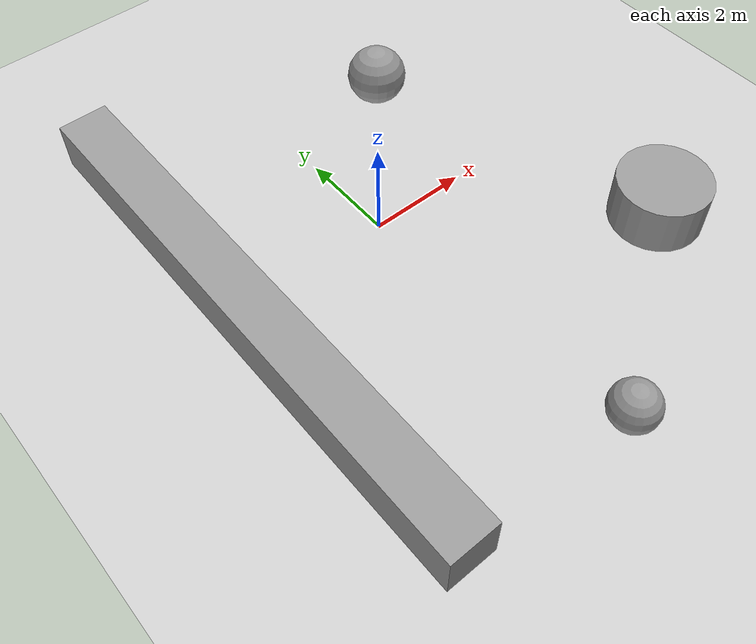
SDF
<sdf version="1.6">
 <world name="default">
  <model name="ground_plane">
   <static>1</static>
   <link name="link">
    <collision name="collision">
     <geometry><plane><normal>0 0 1</normal><size>100 100</size></plane></geometry>
     <surface><friction><ode><mu>100</mu><mu2>50</mu2></ode></friction></surface>
    </collision>
    <visual name="visual">
     <cast_shadows>0</cast_shadows>
     <geometry><plane><normal>0 0 1</normal><size>100 100</size></plane></geometry>
     <material>
      <script><uri>file://media/materials/scripts/gazebo.material</uri><name>Gazebo/Grey</name></script>
     </material>
    </visual>
   </link>
  </model>
  <model name="victim175_hot_moving">
   <pose>2.35732 -0.8159 0.172888 0.520873 -0.168199 0.28405</pose>
   <scale>1 1 1</scale>
   <link name="body">
    <pose>2.35095 -1.5619 1.26381 0.000122 9.2e-05 -8e-06</pose>
    <velocity>0.09656 -0.264115 0.281749 0.277221 0.100558 -0.009097</velocity>
    <acceleration>122.514 -314.23 1836.61 -2.76581 1.08719 1.46072</acceleration>
    <wrench>122.514 -314.23 1836.61 0 -0 0</wrench>
   </link>
   <link name="head">
    <pose>2.35744 -1.6583 1.5625 0.520873 -0.168199 0.28405</pose>
    <velocity>0.12707 -0.308782 0.307753 0.01932 0.07082 0.040544</velocity>
    <acceleration>154.847 -375.207 1855.3 0.567475 1.5254 -2.47646</acceleration>
    <wrench>154.847 -375.207 1855.3 0 -0 0</wrench>
   </link>
   <link name="lArm1L">
    <pose>2.57638 -1.5616 1.22018 -0.001191 -0.028981 0.087249</pose>
    <velocity>0.089181 -0.243143 0.102819 0.071833 0.030979 -0.001889</velocity>
    <acceleration>130.93 -328.968 1317.02 -1.46089 -0.398665 3.11048</acceleration>
    <wrench>130.93 -328.968 1317.02 0 -0 0</wrench>
   </link>
   <link name="lArm1U">
    <pose>2.57276 -1.5618 1.34547 0.00134 -0.028973 -4.1e-05</pose>
    <velocity>0.09714 -0.266119 0.149773 0.071968 0.031379 -0.002523</velocity>
    <acceleration>137.16 -342.546 1463.83 -1.03346 -0.148995 -0.645721</acceleration>
    <wrench>137.16 -342.546 1463.83 0 -0 0</wrench>
   </link>
   <link name="lArm2L">
    <pose>2.58307 -1.5626 0.992234 -0.022652 -0.020196 0.629159</pose>
    <velocity>0.076699 -0.210512 0.027979 0.044228 0.027479 -0.002856</velocity>
    <acceleration>119.656 -308.426 1080.91 2.76957 1.37668 -1.49571</acceleration>
    <wrench>119.656 -308.426 1080.91 0 -0 0</wrench>
   </link>
   <link name="lArm2U">
    <pose>2.57981 -1.5619 1.10243 -0.00899 -0.028982 0.087249</pose>
    <velocity>0.08237 -0.22461 0.061931 0.044831 0.028093 -0.002674</velocity>
    <acceleration>125.148 -317.816 1188.65 2.93193 0.845161 -1.09206</acceleration>
    <wrench>125.148 -317.816 1188.65 0 -0 0</wrench>
   </link>
   <link name="lButt">
    <pose>2.45093 -1.5619 0.936971 0.000162 5.4e-05 2e-06</pose>
    <velocity>0.078293 -0.214416 0.471486 0.291191 0.102777 0.055825</velocity>
    <acceleration>86.7676 -234.482 2185.25 -1.01073 0.204875 -2.5058</acceleration>
    <wrench>86.7676 -234.482 2185.25 0 -0 0</wrench>
   </link>
   <link name="lFoot">
    <pose>2.45091 -1.6568 0.031145 0.000357 0.000129 0</pose>
    <velocity>0.010011 -0.005248 0.68237 0.392736 0.145524 0.053453</velocity>
    <acceleration>7.57045 2.42667 2938.71 2.18948 -1.4795 -3.0633</acceleration>
    <wrench>7.57045 2.42667 2938.71 0 -0 0</wrench>
   </link>
   <link name="lHand">
    <pose>2.58619 -1.5619 0.847089 -0.000327 -0.020197 0.62916</pose>
    <velocity>0.072568 -0.199703 0.001856 0.017379 0.00793 -0.003526</velocity>
    <acceleration>115.459 -300.137 996.552 2.95993 -1.24477 0.475282</acceleration>
    <wrench>115.459 -300.137 996.552 0 -0 0</wrench>
   </link>
   <link name="lLeg1">
    <pose>2.45091 -1.5619 0.669949 0.000187 7.3e-05 2e-06</pose>
    <velocity>0.058232 -0.157771 0.576007 0.313692 0.116043 0.05579</velocity>
    <acceleration>63.5159 -174.424 2422.61 2.42058 -1.15376 0.623852</acceleration>
    <wrench>63.5159 -174.424 2422.61 0 -0 0</wrench>
   </link>
   <link name="lLeg2">
    <pose>2.4509 -1.5618 0.240625 0.000224 0.000103 2e-06</pose>
    <velocity>0.015377 -0.048914 0.632154 0.345309 0.130213 0.055747</velocity>
    <acceleration>12.5038 -53.9147 2714.05 -0.689091 -0.490549 0.608515</acceleration>
    <wrench>12.5038 -53.9147 2714.05 0 -0 0</wrench>
   </link>
   <link name="lShoulder">
    <pose>2.54596 -1.5619 1.40835 0.00134 0.000229 -2e-06</pose>
    <velocity>0.104607 -0.286157 0.204081 0.072626 0.116684 -0.003354</velocity>
    <acceleration>139.447 -349.213 1631.34 2.19973 -1.31057 1.70203</acceleration>
    <wrench>139.447 -349.213 1631.34 0 -0 0</wrench>
   </link>
   <link name="neck">
    <pose>2.35097 -1.5721 1.45683 0.544965 9e-05 -6e-06</pose>
    <velocity>0.116402 -0.306073 0.305074 0.018946 0.100926 -0.009704</velocity>
    <acceleration>143.852 -356.978 1854.44 -0.936083 1.10656 1.72911</acceleration>
    <wrench>143.852 -356.978 1854.44 0 -0 0</wrench>
   </link>
   <link name="rArm1L">
    <pose>2.12854 -1.5593 1.21932 0.012833 -0.013237 1.56994</pose>
    <velocity>0.085633 -0.208707 0.004037 0.050852 0.018732 -0.00275</velocity>
    <acceleration>140.23 -323.453 949.954 2.51164 -1.31541 -0.17231</acceleration>
    <wrench>140.23 -323.453 949.954 0 -0 0</wrench>
   </link>
   <link name="rArm1U">
    <pose>2.13013 -1.561 1.34443 0.01325 0.01282 0.000161</pose>
    <velocity>0.091763 -0.217914 0.027943 0.050468 0.018614 -0.010211</velocity>
    <acceleration>148.783 -333.431 1015.59 2.27487 -0.929644 -1.33915</acceleration>
    <wrench>148.783 -333.431 1015.59 0 -0 0</wrench>
   </link>
   <link name="rArm2L">
    <pose>2.12642 -1.5563 0.99177 -0.011105 -0.010759 2.91432</pose>
    <velocity>0.079786 -0.194209 -0.008612 0.051486 0.022451 -0.000284</velocity>
    <acceleration>133.513 -304.115 912.114 2.41399 -1.10088 -0.537191</acceleration>
    <wrench>133.513 -304.115 912.114 0 -0 0</wrench>
   </link>
   <link name="rArm2U">
    <pose>2.1273 -1.5578 1.10177 0.007991 -0.013237 1.56994</pose>
    <velocity>0.082353 -0.200102 -0.007387 0.051028 0.022559 -0.002704</velocity>
    <acceleration>135.461 -313.382 915.894 2.46236 -1.10207 -0.749055</acceleration>
    <wrench>135.461 -313.382 915.894 0 -0 0</wrench>
   </link>
   <link name="rButt">
    <pose>2.25095 -1.5619 0.937334 0.000183 9.3e-05 2e-06</pose>
    <velocity>0.089059 -0.238685 0.596488 0.308009 0.117411 0.056272</velocity>
    <acceleration>92.1794 -237.258 2450.5 -2.62512 1.41369 2.12057</acceleration>
    <wrench>92.1794 -237.258 2450.5 0 -0 0</wrench>
   </link>
   <link name="rFoot">
    <pose>2.2509 -1.6568 0.031153 0.000355 0.000125 0</pose>
    <velocity>0.010093 -0.005244 0.69271 0.394649 0.145097 0.05404</velocity>
    <acceleration>7.94145 0.995054 2941.77 1.92282 -0.54546 1.09411</acceleration>
    <wrench>7.94145 0.995054 2941.77 0 -0 0</wrench>
   </link>
   <link name="rHand">
    <pose>2.12502 -1.5555 0.846837 0.000739 -0.010759 2.91432</pose>
    <velocity>0.076575 -0.191419 8.5e-05 0.021951 0.029396 4.4e-05</velocity>
    <acceleration>129.779 -296.819 937.824 -0.388479 -1.4249 0.045745</acceleration>
    <wrench>129.779 -296.819 937.824 0 -0 0</wrench>
   </link>
   <link name="rLeg1">
    <pose>2.25094 -1.5619 0.670149 0.000209 0.000102 2e-06</pose>
    <velocity>0.062188 -0.173324 0.674433 0.32873 0.124464 0.056242</velocity>
    <acceleration>62.9612 -170.547 2632.27 -1.69295 0.872767 2.10219</acceleration>
    <wrench>62.9612 -170.547 2632.27 0 -0 0</wrench>
   </link>
   <link name="rLeg2">
    <pose>2.25091 -1.5618 0.240762 0.000247 0.000112 2e-06</pose>
    <velocity>0.018004 -0.054623 0.678368 0.356574 0.134808 0.056204</velocity>
    <acceleration>13.8045 -54.7102 2797.22 -0.141521 0.293514 2.07512</acceleration>
    <wrench>13.8045 -54.7102 2797.22 0 -0 0</wrench>
   </link>
   <link name="rShoulder">
    <pose>2.15594 -1.5618 1.40712 0.013248 7.3e-05 -7e-06</pose>
    <velocity>0.094156 -0.230064 0.056517 0.050088 0.091707 -0.009243</velocity>
    <acceleration>151.99 -340.116 1107.99 -0.77895 -1.07444 2.34262</acceleration>
    <wrench>151.99 -340.116 1107.99 0 -0 0</wrench>
   </link>
   <link name="waist">
    <pose>2.35095 -1.5619 1.01483 0.000167 9.7e-05 -7e-06</pose>
    <velocity>0.087887 -0.240287 0.43031 0.296578 0.11151 -0.009808</velocity>
    <acceleration>89.9795 -242.317 2286.16 -0.415921 -0.616103 2.74912</acceleration>
    <wrench>89.9795 -242.317 2286.16 0 -0 0</wrench>
   </link>
  </model>
  <model name="victimWoman">
   <pose>2.3634 -0.2909 0.218558 -0.036944 1.3e-05 3.12469</pose>
   <scale>1 1 1</scale>
   <link name="defaultModel_0::custom_0">
    <pose>2.3634 -0.2909 0.218558 -0.036944 1.3e-05 3.12469</pose>
    <velocity>0 0 0 0 -0 0</velocity>
    <acceleration>0 0 0 0 -0 0</acceleration>
    <wrench>0 0 0 0 -0 0</wrench>
   </link>
  </model>
  <model name="unit_box_0">
   <pose>-3.22239 -0.406429 0.499997 0 5e-06 1e-06</pose>
   <link name="link">
    <inertial>
     <mass>1</mass>
     <inertia>
      <ixx>0.166667</ixx>
      <ixy>0</ixy>
      <ixz>0</ixz>
      <iyy>0.166667</iyy>
      <iyz>0</iyz>
      <izz>0.166667</izz>
     </inertia>
    </inertial>
    <collision name="collision"><geometry><box><size>1 11.3508 1</size></box></geometry></collision>
    <visual name="visual">
     <geometry><box><size>1 11.3508 1</size></box></geometry>
     <material>
      <script><name>Gazebo/Grey</name><uri>file://media/materials/scripts/gazebo.material</uri></script>
     </material>
    </visual>
   </link>
  </model>
  <model name="unit_cylinder_0">
   <pose>4.28202 -3.20336 0.499995 6e-06 6e-06 1e-06</pose>
   <link name="link">
    <inertial>
     <mass>1</mass>
     <inertia><ixx>0.145833</ixx><ixy>0</ixy><ixz>0</ixz><iyy>0.145833</iyy><iyz>0</iyz><izz>0.125</izz></inertia>
    </inertial>
    <collision name="collision">
     <geometry><cylinder><radius>0.924565</radius><length>1</length></cylinder></geometry>
    </collision>
    <visual name="visual">
     <geometry><cylinder><radius>0.924565</radius><length>1</length></cylinder></geometry>
     <material>
      <script><name>Gazebo/Grey</name><uri>file://media/materials/scripts/gazebo.material</uri></script>
     </material>
    </visual>
   </link>
  </model>
  <model name="unit_sphere_0">
   <pose>0.491207 -5.89826 0.477722 0 -0 0</pose>
   <link name="link">
    <inertial>
     <mass>1</mass>
     <inertia><ixx>0.1</ixx><ixy>0</ixy><ixz>0</ixz><iyy>0.1</iyy><iyz>0</iyz><izz>0.1</izz></inertia>
    </inertial>
    <collision name="collision"><geometry><sphere><radius>0.477722</radius></sphere></geometry></collision>
    <visual name="visual">
     <geometry><sphere><radius>0.477722</radius></sphere></geometry>
     <material>
      <script><name>Gazebo/Grey</name><uri>file://media/materials/scripts/gazebo.material</uri></script>
     </material>
    </visual>
   </link>
  </model>
  <model name="unit_sphere_1">
   <pose>2.31024 2.87399 0.607315 0 -0 0</pose>
   <link name="link">
    <inertial>
     <mass>1</mass>
     <inertia><ixx>0.1</ixx><ixy>0</ixy><ixz>0</ixz><iyy>0.1</iyy><iyz>0</iyz><izz>0.1</izz></inertia>
    </inertial>
    <collision name="collision"><geometry><sphere><radius>0.607315</radius></sphere></geometry></collision>
    <visual name="visual">
     <geometry><sphere><radius>0.607315</radius></sphere></geometry>
     <material>
      <script><name>Gazebo/Grey</name><uri>file://media/materials/scripts/gazebo.material</uri></script>
     </material>
    </visual>
   </link>
  </model>
 </world>
</sdf>
